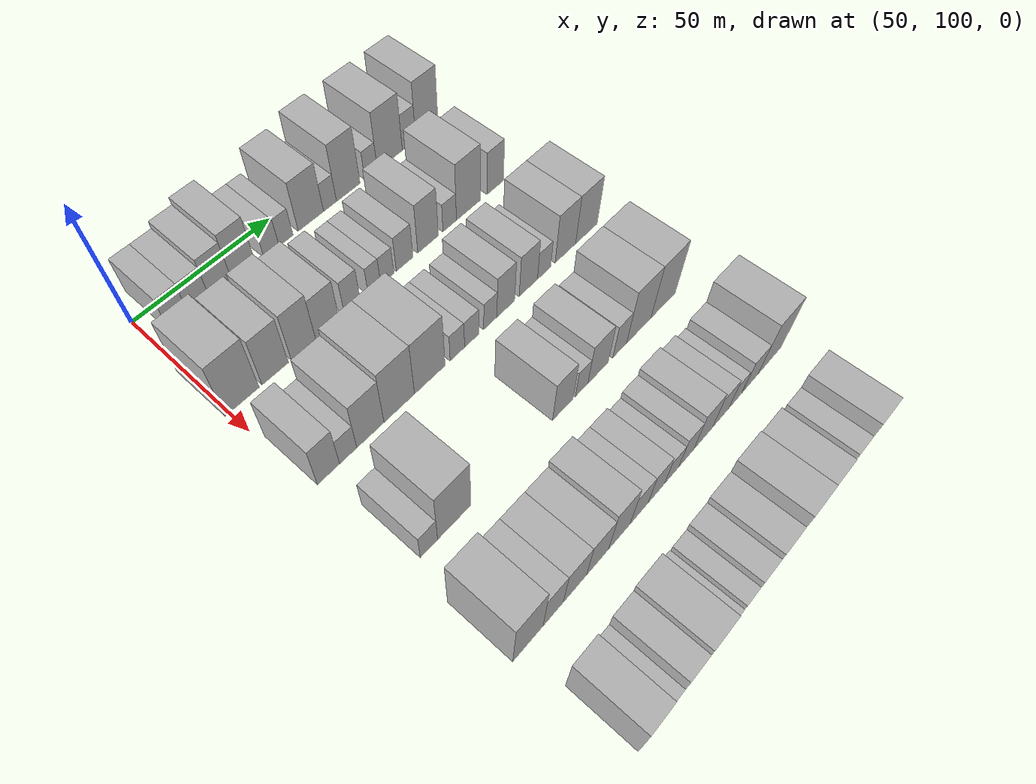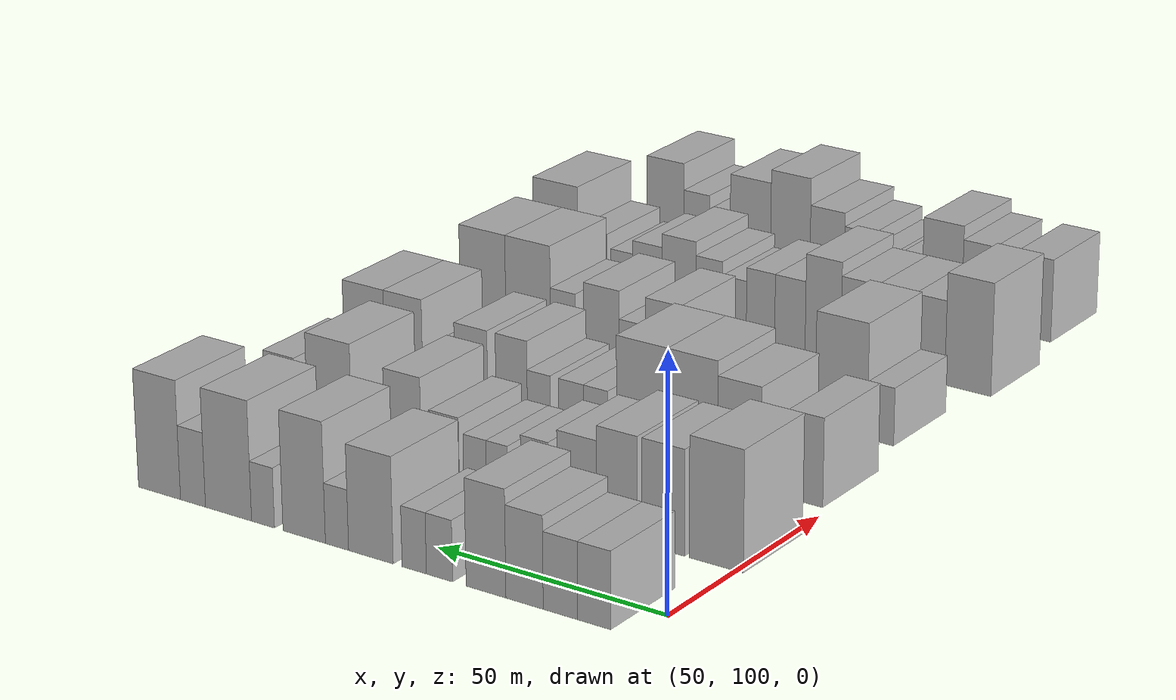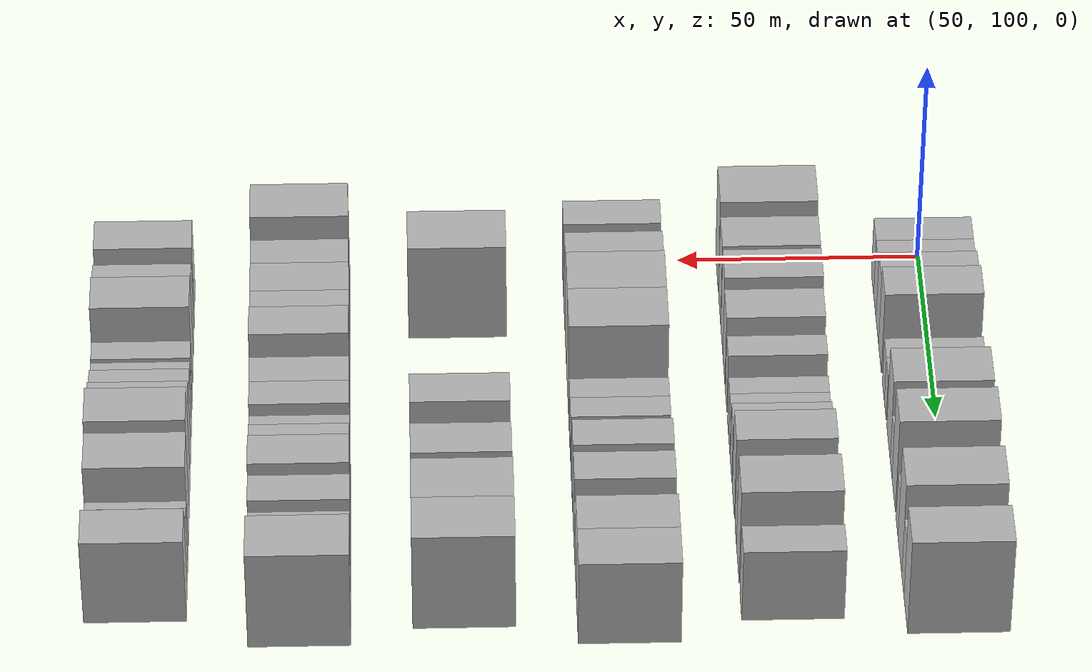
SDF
<sdf version="1.6">
 <world name="default">
  <model name="building_72">
   <static>1</static>
   <pose>50.0000 108.7007 0 0.000000 0.000000 0.000000</pose>
   <link name="link">
    <pose>0 0 7.50 0 0 0</pose>
    <collision name="collision"><geometry><box><size>20.0000 7.0072 15.0000</size></box></geometry></collision>
    <visual name="visual">
     <cast_shadows>0</cast_shadows>
     <geometry><box><size>20.0000 7.0072 15.0000</size></box></geometry>
     <material>
      <script>
       <uri>model://HANNAS_wall/materials/scripts</uri>
       <uri>model://HANNAS_wall/materials/textures</uri>
       <name>vrc/HANNAS_wall</name>
      </script>
     </material>
    </visual>
   </link>
  </model>
  <model name="building_73">
   <static>1</static>
   <pose>50.0000 115.8831 0 0.000000 0.000000 0.000000</pose>
   <link name="link">
    <pose>0 0 7.50 0 0 0</pose>
    <collision name="collision"><geometry><box><size>20.0000 7.3577 15.0000</size></box></geometry></collision>
    <visual name="visual">
     <cast_shadows>0</cast_shadows>
     <geometry><box><size>20.0000 7.3577 15.0000</size></box></geometry>
     <material>
      <script>
       <uri>model://HANNAS_wall/materials/scripts</uri>
       <uri>model://HANNAS_wall/materials/textures</uri>
       <name>vrc/HANNAS_wall</name>
      </script>
     </material>
    </visual>
   </link>
  </model>
  <model name="building_74">
   <static>1</static>
   <pose>50.0000 123.5903 0 0.000000 0.000000 0.000000</pose>
   <link name="link">
    <pose>0 0 9.00 0 0 0</pose>
    <collision name="collision"><geometry><box><size>20.0000 8.0567 18.0000</size></box></geometry></collision>
    <visual name="visual">
     <cast_shadows>0</cast_shadows>
     <geometry><box><size>20.0000 8.0567 18.0000</size></box></geometry>
     <material>
      <script>
       <uri>model://HANNAS_wall/materials/scripts</uri>
       <uri>model://HANNAS_wall/materials/textures</uri>
       <name>vrc/HANNAS_wall</name>
      </script>
     </material>
    </visual>
   </link>
  </model>
  <model name="building_75">
   <static>1</static>
   <pose>50.0000 131.9729 0 0.000000 0.000000 0.000000</pose>
   <link name="link">
    <pose>0 0 10.50 0 0 0</pose>
    <collision name="collision"><geometry><box><size>20.0000 8.7083 21.0000</size></box></geometry></collision>
    <visual name="visual">
     <cast_shadows>0</cast_shadows>
     <geometry><box><size>20.0000 8.7083 21.0000</size></box></geometry>
     <material>
      <script>
       <uri>model://HANNAS_wall/materials/scripts</uri>
       <uri>model://HANNAS_wall/materials/textures</uri>
       <name>vrc/HANNAS_wall</name>
      </script>
     </material>
    </visual>
   </link>
  </model>
  <model name="building_76">
   <static>1</static>
   <pose>50.0000 142.2325 0 0.000000 0.000000 0.000000</pose>
   <link name="link">
    <pose>0 0 6.00 0 0 0</pose>
    <collision name="collision"><geometry><box><size>20.0000 5.8109 12.0000</size></box></geometry></collision>
    <visual name="visual">
     <cast_shadows>0</cast_shadows>
     <geometry><box><size>20.0000 5.8109 12.0000</size></box></geometry>
     <material>
      <script>
       <uri>model://HANNAS_wall/materials/scripts</uri>
       <uri>model://HANNAS_wall/materials/textures</uri>
       <name>vrc/HANNAS_wall</name>
      </script>
     </material>
    </visual>
   </link>
  </model>
  <model name="building_77">
   <static>1</static>
   <pose>50.0000 147.8658 0 0.000000 0.000000 0.000000</pose>
   <link name="link">
    <pose>0 0 6.00 0 0 0</pose>
    <collision name="collision"><geometry><box><size>20.0000 5.4557 12.0000</size></box></geometry></collision>
    <visual name="visual">
     <cast_shadows>0</cast_shadows>
     <geometry><box><size>20.0000 5.4557 12.0000</size></box></geometry>
     <material>
      <script>
       <uri>model://HANNAS_wall/materials/scripts</uri>
       <uri>model://HANNAS_wall/materials/textures</uri>
       <name>vrc/HANNAS_wall</name>
      </script>
     </material>
    </visual>
   </link>
  </model>
  <model name="building_78">
   <static>1</static>
   <pose>50.0000 157.6757 0 0.000000 0.000000 0.000000</pose>
   <link name="link">
    <pose>0 0 10.50 0 0 0</pose>
    <collision name="collision"><geometry><box><size>20.0000 10.1641 21.0000</size></box></geometry></collision>
    <visual name="visual">
     <cast_shadows>0</cast_shadows>
     <geometry><box><size>20.0000 10.1641 21.0000</size></box></geometry>
     <material>
      <script>
       <uri>model://HANNAS_wall/materials/scripts</uri>
       <uri>model://HANNAS_wall/materials/textures</uri>
       <name>vrc/HANNAS_wall</name>
      </script>
     </material>
    </visual>
   </link>
  </model>
  <model name="building_79">
   <static>1</static>
   <pose>50.0000 165.4263 0 0.000000 0.000000 0.000000</pose>
   <link name="link">
    <pose>0 0 6.00 0 0 0</pose>
    <collision name="collision"><geometry><box><size>20.0000 5.3370 12.0000</size></box></geometry></collision>
    <visual name="visual">
     <cast_shadows>0</cast_shadows>
     <geometry><box><size>20.0000 5.3370 12.0000</size></box></geometry>
     <material>
      <script>
       <uri>model://HANNAS_wall/materials/scripts</uri>
       <uri>model://HANNAS_wall/materials/textures</uri>
       <name>vrc/HANNAS_wall</name>
      </script>
     </material>
    </visual>
   </link>
  </model>
  <model name="building_80">
   <static>1</static>
   <pose>50.0000 173.0352 0 0.000000 0.000000 0.000000</pose>
   <link name="link">
    <pose>0 0 12.00 0 0 0</pose>
    <collision name="collision"><geometry><box><size>20.0000 9.8808 24.0000</size></box></geometry></collision>
    <visual name="visual">
     <cast_shadows>0</cast_shadows>
     <geometry><box><size>20.0000 9.8808 24.0000</size></box></geometry>
     <material>
      <script>
       <uri>model://HANNAS_wall/materials/scripts</uri>
       <uri>model://HANNAS_wall/materials/textures</uri>
       <name>vrc/HANNAS_wall</name>
      </script>
     </material>
    </visual>
   </link>
  </model>
  <model name="building_81">
   <static>1</static>
   <pose>50.0000 182.6878 0 0.000000 0.000000 0.000000</pose>
   <link name="link">
    <pose>0 0 6.00 0 0 0</pose>
    <collision name="collision"><geometry><box><size>20.0000 5.4244 12.0000</size></box></geometry></collision>
    <visual name="visual">
     <cast_shadows>0</cast_shadows>
     <geometry><box><size>20.0000 5.4244 12.0000</size></box></geometry>
     <material>
      <script>
       <uri>model://HANNAS_wall/materials/scripts</uri>
       <uri>model://HANNAS_wall/materials/textures</uri>
       <name>vrc/HANNAS_wall</name>
      </script>
     </material>
    </visual>
   </link>
  </model>
  <model name="building_82">
   <static>1</static>
   <pose>50.0000 190.9141 0 0.000000 0.000000 0.000000</pose>
   <link name="link">
    <pose>0 0 12.00 0 0 0</pose>
    <collision name="collision"><geometry><box><size>20.0000 11.0281 24.0000</size></box></geometry></collision>
    <visual name="visual">
     <cast_shadows>0</cast_shadows>
     <geometry><box><size>20.0000 11.0281 24.0000</size></box></geometry>
     <material>
      <script>
       <uri>model://HANNAS_wall/materials/scripts</uri>
       <uri>model://HANNAS_wall/materials/textures</uri>
       <name>vrc/HANNAS_wall</name>
      </script>
     </material>
    </visual>
   </link>
  </model>
  <model name="building_83">
   <static>1</static>
   <pose>50.0000 199.4466 0 0.000000 0.000000 0.000000</pose>
   <link name="link">
    <pose>0 0 7.50 0 0 0</pose>
    <collision name="collision"><geometry><box><size>20.0000 6.0369 15.0000</size></box></geometry></collision>
    <visual name="visual">
     <cast_shadows>0</cast_shadows>
     <geometry><box><size>20.0000 6.0369 15.0000</size></box></geometry>
     <material>
      <script>
       <uri>model://HANNAS_wall/materials/scripts</uri>
       <uri>model://HANNAS_wall/materials/textures</uri>
       <name>vrc/HANNAS_wall</name>
      </script>
     </material>
    </visual>
   </link>
  </model>
  <model name="building_84">
   <static>1</static>
   <pose>50.0000 207.6008 0 0.000000 0.000000 0.000000</pose>
   <link name="link">
    <pose>0 0 12.00 0 0 0</pose>
    <collision name="collision"><geometry><box><size>20.0000 10.2717 24.0000</size></box></geometry></collision>
    <visual name="visual">
     <cast_shadows>0</cast_shadows>
     <geometry><box><size>20.0000 10.2717 24.0000</size></box></geometry>
     <material>
      <script>
       <uri>model://HANNAS_wall/materials/scripts</uri>
       <uri>model://HANNAS_wall/materials/textures</uri>
       <name>vrc/HANNAS_wall</name>
      </script>
     </material>
    </visual>
   </link>
  </model>
  <model name="building_197">
   <static>1</static>
   <pose>82.0000 104.3335 0 0.000000 0.000000 0.000000</pose>
   <link name="link">
    <pose>0 0 12.00 0 0 0</pose>
    <collision name="collision"><geometry><box><size>20.0000 11.5936 24.0000</size></box></geometry></collision>
    <visual name="visual">
     <cast_shadows>0</cast_shadows>
     <geometry><box><size>20.0000 11.5936 24.0000</size></box></geometry>
     <material>
      <script>
       <uri>model://HANNAS_wall/materials/scripts</uri>
       <uri>model://HANNAS_wall/materials/textures</uri>
       <name>vrc/HANNAS_wall</name>
      </script>
     </material>
    </visual>
   </link>
  </model>
  <model name="building_198">
   <static>1</static>
   <pose>82.0000 115.7813 0 0.000000 0.000000 0.000000</pose>
   <link name="link">
    <pose>0 0 10.50 0 0 0</pose>
    <collision name="collision"><geometry><box><size>20.0000 9.3020 21.0000</size></box></geometry></collision>
    <visual name="visual">
     <cast_shadows>0</cast_shadows>
     <geometry><box><size>20.0000 9.3020 21.0000</size></box></geometry>
     <material>
      <script>
       <uri>model://HANNAS_wall/materials/scripts</uri>
       <uri>model://HANNAS_wall/materials/textures</uri>
       <name>vrc/HANNAS_wall</name>
      </script>
     </material>
    </visual>
   </link>
  </model>
  <model name="building_199">
   <static>1</static>
   <pose>82.0000 125.8905 0 0.000000 0.000000 0.000000</pose>
   <link name="link">
    <pose>0 0 10.50 0 0 0</pose>
    <collision name="collision"><geometry><box><size>20.0000 8.9165 21.0000</size></box></geometry></collision>
    <visual name="visual">
     <cast_shadows>0</cast_shadows>
     <geometry><box><size>20.0000 8.9165 21.0000</size></box></geometry>
     <material>
      <script>
       <uri>model://HANNAS_wall/materials/scripts</uri>
       <uri>model://HANNAS_wall/materials/textures</uri>
       <name>vrc/HANNAS_wall</name>
      </script>
     </material>
    </visual>
   </link>
  </model>
  <model name="building_200">
   <static>1</static>
   <pose>82.0000 134.7702 0 0.000000 0.000000 0.000000</pose>
   <link name="link">
    <pose>0 0 9.00 0 0 0</pose>
    <collision name="collision"><geometry><box><size>20.0000 8.8429 18.0000</size></box></geometry></collision>
    <visual name="visual">
     <cast_shadows>0</cast_shadows>
     <geometry><box><size>20.0000 8.8429 18.0000</size></box></geometry>
     <material>
      <script>
       <uri>model://HANNAS_wall/materials/scripts</uri>
       <uri>model://HANNAS_wall/materials/textures</uri>
       <name>vrc/HANNAS_wall</name>
      </script>
     </material>
    </visual>
   </link>
  </model>
  <model name="building_201">
   <static>1</static>
   <pose>82.0000 144.2933 0 0.000000 0.000000 0.000000</pose>
   <link name="link">
    <pose>0 0 7.50 0 0 0</pose>
    <collision name="collision"><geometry><box><size>20.0000 6.2032 15.0000</size></box></geometry></collision>
    <visual name="visual">
     <cast_shadows>0</cast_shadows>
     <geometry><box><size>20.0000 6.2032 15.0000</size></box></geometry>
     <material>
      <script>
       <uri>model://HANNAS_wall/materials/scripts</uri>
       <uri>model://HANNAS_wall/materials/textures</uri>
       <name>vrc/HANNAS_wall</name>
      </script>
     </material>
    </visual>
   </link>
  </model>
  <model name="building_202">
   <static>1</static>
   <pose>82.0000 152.8547 0 0.000000 0.000000 0.000000</pose>
   <link name="link">
    <pose>0 0 6.00 0 0 0</pose>
    <collision name="collision"><geometry><box><size>20.0000 4.9196 12.0000</size></box></geometry></collision>
    <visual name="visual">
     <cast_shadows>0</cast_shadows>
     <geometry><box><size>20.0000 4.9196 12.0000</size></box></geometry>
     <material>
      <script>
       <uri>model://HANNAS_wall/materials/scripts</uri>
       <uri>model://HANNAS_wall/materials/textures</uri>
       <name>vrc/HANNAS_wall</name>
      </script>
     </material>
    </visual>
   </link>
  </model>
  <model name="building_203">
   <static>1</static>
   <pose>82.0000 157.9532 0 0.000000 0.000000 0.000000</pose>
   <link name="link">
    <pose>0 0 6.00 0 0 0</pose>
    <collision name="collision"><geometry><box><size>20.0000 5.2775 12.0000</size></box></geometry></collision>
    <visual name="visual">
     <cast_shadows>0</cast_shadows>
     <geometry><box><size>20.0000 5.2775 12.0000</size></box></geometry>
     <material>
      <script>
       <uri>model://HANNAS_wall/materials/scripts</uri>
       <uri>model://HANNAS_wall/materials/textures</uri>
       <name>vrc/HANNAS_wall</name>
      </script>
     </material>
    </visual>
   </link>
  </model>
  <model name="building_204">
   <static>1</static>
   <pose>82.0000 165.0145 0 0.000000 0.000000 0.000000</pose>
   <link name="link">
    <pose>0 0 7.50 0 0 0</pose>
    <collision name="collision"><geometry><box><size>20.0000 6.8451 15.0000</size></box></geometry></collision>
    <visual name="visual">
     <cast_shadows>0</cast_shadows>
     <geometry><box><size>20.0000 6.8451 15.0000</size></box></geometry>
     <material>
      <script>
       <uri>model://HANNAS_wall/materials/scripts</uri>
       <uri>model://HANNAS_wall/materials/textures</uri>
       <name>vrc/HANNAS_wall</name>
      </script>
     </material>
    </visual>
   </link>
  </model>
  <model name="building_205">
   <static>1</static>
   <pose>82.0000 174.7736 0 0.000000 0.000000 0.000000</pose>
   <link name="link">
    <pose>0 0 10.50 0 0 0</pose>
    <collision name="collision"><geometry><box><size>20.0000 8.6732 21.0000</size></box></geometry></collision>
    <visual name="visual">
     <cast_shadows>0</cast_shadows>
     <geometry><box><size>20.0000 8.6732 21.0000</size></box></geometry>
     <material>
      <script>
       <uri>model://HANNAS_wall/materials/scripts</uri>
       <uri>model://HANNAS_wall/materials/textures</uri>
       <name>vrc/HANNAS_wall</name>
      </script>
     </material>
    </visual>
   </link>
  </model>
  <model name="building_206">
   <static>1</static>
   <pose>82.0000 184.0374 0 0.000000 0.000000 0.000000</pose>
   <link name="link">
    <pose>0 0 6.00 0 0 0</pose>
    <collision name="collision"><geometry><box><size>20.0000 5.8544 12.0000</size></box></geometry></collision>
    <visual name="visual">
     <cast_shadows>0</cast_shadows>
     <geometry><box><size>20.0000 5.8544 12.0000</size></box></geometry>
     <material>
      <script>
       <uri>model://HANNAS_wall/materials/scripts</uri>
       <uri>model://HANNAS_wall/materials/textures</uri>
       <name>vrc/HANNAS_wall</name>
      </script>
     </material>
    </visual>
   </link>
  </model>
  <model name="building_207">
   <static>1</static>
   <pose>82.0000 192.3250 0 0.000000 0.000000 0.000000</pose>
   <link name="link">
    <pose>0 0 12.00 0 0 0</pose>
    <collision name="collision"><geometry><box><size>20.0000 10.7208 24.0000</size></box></geometry></collision>
    <visual name="visual">
     <cast_shadows>0</cast_shadows>
     <geometry><box><size>20.0000 10.7208 24.0000</size></box></geometry>
     <material>
      <script>
       <uri>model://HANNAS_wall/materials/scripts</uri>
       <uri>model://HANNAS_wall/materials/textures</uri>
       <name>vrc/HANNAS_wall</name>
      </script>
     </material>
    </visual>
   </link>
  </model>
  <model name="building_208">
   <static>1</static>
   <pose>82.0000 204.4524 0 0.000000 0.000000 0.000000</pose>
   <link name="link">
    <pose>0 0 9.00 0 0 0</pose>
    <collision name="collision"><geometry><box><size>20.0000 7.5341 18.0000</size></box></geometry></collision>
    <visual name="visual">
     <cast_shadows>0</cast_shadows>
     <geometry><box><size>20.0000 7.5341 18.0000</size></box></geometry>
     <material>
      <script>
       <uri>model://HANNAS_wall/materials/scripts</uri>
       <uri>model://HANNAS_wall/materials/textures</uri>
       <name>vrc/HANNAS_wall</name>
      </script>
     </material>
    </visual>
   </link>
  </model>
  <model name="building_321">
   <static>1</static>
   <pose>114.0000 105.4223 0 0.000000 0.000000 0.000000</pose>
   <link name="link">
    <pose>0 0 9.00 0 0 0</pose>
    <collision name="collision"><geometry><box><size>20.0000 7.5672 18.0000</size></box></geometry></collision>
    <visual name="visual">
     <cast_shadows>0</cast_shadows>
     <geometry><box><size>20.0000 7.5672 18.0000</size></box></geometry>
     <material>
      <script>
       <uri>model://HANNAS_wall/materials/scripts</uri>
       <uri>model://HANNAS_wall/materials/textures</uri>
       <name>vrc/HANNAS_wall</name>
      </script>
     </material>
    </visual>
   </link>
  </model>
  <model name="building_322">
   <static>1</static>
   <pose>114.0000 112.1959 0 0.000000 0.000000 0.000000</pose>
   <link name="link">
    <pose>0 0 6.00 0 0 0</pose>
    <collision name="collision"><geometry><box><size>20.0000 5.9800 12.0000</size></box></geometry></collision>
    <visual name="visual">
     <cast_shadows>0</cast_shadows>
     <geometry><box><size>20.0000 5.9800 12.0000</size></box></geometry>
     <material>
      <script>
       <uri>model://HANNAS_wall/materials/scripts</uri>
       <uri>model://HANNAS_wall/materials/textures</uri>
       <name>vrc/HANNAS_wall</name>
      </script>
     </material>
    </visual>
   </link>
  </model>
  <model name="building_323">
   <static>1</static>
   <pose>114.0000 120.0453 0 0.000000 0.000000 0.000000</pose>
   <link name="link">
    <pose>0 0 10.50 0 0 0</pose>
    <collision name="collision"><geometry><box><size>20.0000 9.7189 21.0000</size></box></geometry></collision>
    <visual name="visual">
     <cast_shadows>0</cast_shadows>
     <geometry><box><size>20.0000 9.7189 21.0000</size></box></geometry>
     <material>
      <script>
       <uri>model://HANNAS_wall/materials/scripts</uri>
       <uri>model://HANNAS_wall/materials/textures</uri>
       <name>vrc/HANNAS_wall</name>
      </script>
     </material>
    </visual>
   </link>
  </model>
  <model name="building_324">
   <static>1</static>
   <pose>114.0000 130.5648 0 0.000000 0.000000 0.000000</pose>
   <link name="link">
    <pose>0 0 12.00 0 0 0</pose>
    <collision name="collision"><geometry><box><size>20.0000 11.3199 24.0000</size></box></geometry></collision>
    <visual name="visual">
     <cast_shadows>0</cast_shadows>
     <geometry><box><size>20.0000 11.3199 24.0000</size></box></geometry>
     <material>
      <script>
       <uri>model://HANNAS_wall/materials/scripts</uri>
       <uri>model://HANNAS_wall/materials/textures</uri>
       <name>vrc/HANNAS_wall</name>
      </script>
     </material>
    </visual>
   </link>
  </model>
  <model name="building_325">
   <static>1</static>
   <pose>114.0000 142.0952 0 0.000000 0.000000 0.000000</pose>
   <link name="link">
    <pose>0 0 12.00 0 0 0</pose>
    <collision name="collision"><geometry><box><size>20.0000 11.7410 24.0000</size></box></geometry></collision>
    <visual name="visual">
     <cast_shadows>0</cast_shadows>
     <geometry><box><size>20.0000 11.7410 24.0000</size></box></geometry>
     <material>
      <script>
       <uri>model://HANNAS_wall/materials/scripts</uri>
       <uri>model://HANNAS_wall/materials/textures</uri>
       <name>vrc/HANNAS_wall</name>
      </script>
     </material>
    </visual>
   </link>
  </model>
  <model name="building_326">
   <static>1</static>
   <pose>114.0000 152.8293 0 0.000000 0.000000 0.000000</pose>
   <link name="link">
    <pose>0 0 6.00 0 0 0</pose>
    <collision name="collision"><geometry><box><size>20.0000 5.7272 12.0000</size></box></geometry></collision>
    <visual name="visual">
     <cast_shadows>0</cast_shadows>
     <geometry><box><size>20.0000 5.7272 12.0000</size></box></geometry>
     <material>
      <script>
       <uri>model://HANNAS_wall/materials/scripts</uri>
       <uri>model://HANNAS_wall/materials/textures</uri>
       <name>vrc/HANNAS_wall</name>
      </script>
     </material>
    </visual>
   </link>
  </model>
  <model name="building_327">
   <static>1</static>
   <pose>114.0000 158.6037 0 0.000000 0.000000 0.000000</pose>
   <link name="link">
    <pose>0 0 6.00 0 0 0</pose>
    <collision name="collision"><geometry><box><size>20.0000 5.8215 12.0000</size></box></geometry></collision>
    <visual name="visual">
     <cast_shadows>0</cast_shadows>
     <geometry><box><size>20.0000 5.8215 12.0000</size></box></geometry>
     <material>
      <script>
       <uri>model://HANNAS_wall/materials/scripts</uri>
       <uri>model://HANNAS_wall/materials/textures</uri>
       <name>vrc/HANNAS_wall</name>
      </script>
     </material>
    </visual>
   </link>
  </model>
  <model name="building_328">
   <static>1</static>
   <pose>114.0000 166.2416 0 0.000000 0.000000 0.000000</pose>
   <link name="link">
    <pose>0 0 6.00 0 0 0</pose>
    <collision name="collision"><geometry><box><size>20.0000 5.4544 12.0000</size></box></geometry></collision>
    <visual name="visual">
     <cast_shadows>0</cast_shadows>
     <geometry><box><size>20.0000 5.4544 12.0000</size></box></geometry>
     <material>
      <script>
       <uri>model://HANNAS_wall/materials/scripts</uri>
       <uri>model://HANNAS_wall/materials/textures</uri>
       <name>vrc/HANNAS_wall</name>
      </script>
     </material>
    </visual>
   </link>
  </model>
  <model name="building_329">
   <static>1</static>
   <pose>114.0000 172.7272 0 0.000000 0.000000 0.000000</pose>
   <link name="link">
    <pose>0 0 9.00 0 0 0</pose>
    <collision name="collision"><geometry><box><size>20.0000 7.5168 18.0000</size></box></geometry></collision>
    <visual name="visual">
     <cast_shadows>0</cast_shadows>
     <geometry><box><size>20.0000 7.5168 18.0000</size></box></geometry>
     <material>
      <script>
       <uri>model://HANNAS_wall/materials/scripts</uri>
       <uri>model://HANNAS_wall/materials/textures</uri>
       <name>vrc/HANNAS_wall</name>
      </script>
     </material>
    </visual>
   </link>
  </model>
  <model name="building_330">
   <static>1</static>
   <pose>114.0000 182.4803 0 0.000000 0.000000 0.000000</pose>
   <link name="link">
    <pose>0 0 9.00 0 0 0</pose>
    <collision name="collision"><geometry><box><size>20.0000 7.9894 18.0000</size></box></geometry></collision>
    <visual name="visual">
     <cast_shadows>0</cast_shadows>
     <geometry><box><size>20.0000 7.9894 18.0000</size></box></geometry>
     <material>
      <script>
       <uri>model://HANNAS_wall/materials/scripts</uri>
       <uri>model://HANNAS_wall/materials/textures</uri>
       <name>vrc/HANNAS_wall</name>
      </script>
     </material>
    </visual>
   </link>
  </model>
  <model name="building_331">
   <static>1</static>
   <pose>114.0000 189.4295 0 0.000000 0.000000 0.000000</pose>
   <link name="link">
    <pose>0 0 6.00 0 0 0</pose>
    <collision name="collision"><geometry><box><size>20.0000 5.9091 12.0000</size></box></geometry></collision>
    <visual name="visual">
     <cast_shadows>0</cast_shadows>
     <geometry><box><size>20.0000 5.9091 12.0000</size></box></geometry>
     <material>
      <script>
       <uri>model://HANNAS_wall/materials/scripts</uri>
       <uri>model://HANNAS_wall/materials/textures</uri>
       <name>vrc/HANNAS_wall</name>
      </script>
     </material>
    </visual>
   </link>
  </model>
  <model name="building_332">
   <static>1</static>
   <pose>114.0000 199.1111 0 0.000000 0.000000 0.000000</pose>
   <link name="link">
    <pose>0 0 10.50 0 0 0</pose>
    <collision name="collision"><geometry><box><size>20.0000 9.4540 21.0000</size></box></geometry></collision>
    <visual name="visual">
     <cast_shadows>0</cast_shadows>
     <geometry><box><size>20.0000 9.4540 21.0000</size></box></geometry>
     <material>
      <script>
       <uri>model://HANNAS_wall/materials/scripts</uri>
       <uri>model://HANNAS_wall/materials/textures</uri>
       <name>vrc/HANNAS_wall</name>
      </script>
     </material>
    </visual>
   </link>
  </model>
  <model name="building_333">
   <static>1</static>
   <pose>114.0000 208.9312 0 0.000000 0.000000 0.000000</pose>
   <link name="link">
    <pose>0 0 10.50 0 0 0</pose>
    <collision name="collision"><geometry><box><size>20.0000 10.1862 21.0000</size></box></geometry></collision>
    <visual name="visual">
     <cast_shadows>0</cast_shadows>
     <geometry><box><size>20.0000 10.1862 21.0000</size></box></geometry>
     <material>
      <script>
       <uri>model://HANNAS_wall/materials/scripts</uri>
       <uri>model://HANNAS_wall/materials/textures</uri>
       <name>vrc/HANNAS_wall</name>
      </script>
     </material>
    </visual>
   </link>
  </model>
  <model name="building_442">
   <static>1</static>
   <pose>146.0000 108.3413 0 0.000000 0.000000 0.000000</pose>
   <link name="link">
    <pose>0 0 6.00 0 0 0</pose>
    <collision name="collision"><geometry><box><size>20.0000 5.9735 12.0000</size></box></geometry></collision>
    <visual name="visual">
     <cast_shadows>0</cast_shadows>
     <geometry><box><size>20.0000 5.9735 12.0000</size></box></geometry>
     <material>
      <script>
       <uri>model://HANNAS_wall/materials/scripts</uri>
       <uri>model://HANNAS_wall/materials/textures</uri>
       <name>vrc/HANNAS_wall</name>
      </script>
     </material>
    </visual>
   </link>
  </model>
  <model name="building_443">
   <static>1</static>
   <pose>146.0000 117.2313 0 0.000000 0.000000 0.000000</pose>
   <link name="link">
    <pose>0 0 12.00 0 0 0</pose>
    <collision name="collision"><geometry><box><size>20.0000 11.8064 24.0000</size></box></geometry></collision>
    <visual name="visual">
     <cast_shadows>0</cast_shadows>
     <geometry><box><size>20.0000 11.8064 24.0000</size></box></geometry>
     <material>
      <script>
       <uri>model://HANNAS_wall/materials/scripts</uri>
       <uri>model://HANNAS_wall/materials/textures</uri>
       <name>vrc/HANNAS_wall</name>
      </script>
     </material>
    </visual>
   </link>
  </model>
  <model name="building_444">
   <static>1</static>
   <pose>146.0000 158.7865 0 0.000000 0.000000 0.000000</pose>
   <link name="link">
    <pose>0 0 9.00 0 0 0</pose>
    <collision name="collision"><geometry><box><size>20.0000 8.4347 18.0000</size></box></geometry></collision>
    <visual name="visual">
     <cast_shadows>0</cast_shadows>
     <geometry><box><size>20.0000 8.4347 18.0000</size></box></geometry>
     <material>
      <script>
       <uri>model://HANNAS_wall/materials/scripts</uri>
       <uri>model://HANNAS_wall/materials/textures</uri>
       <name>vrc/HANNAS_wall</name>
      </script>
     </material>
    </visual>
   </link>
  </model>
  <model name="building_445">
   <static>1</static>
   <pose>146.0000 166.6400 0 0.000000 0.000000 0.000000</pose>
   <link name="link">
    <pose>0 0 6.00 0 0 0</pose>
    <collision name="collision"><geometry><box><size>20.0000 5.2723 12.0000</size></box></geometry></collision>
    <visual name="visual">
     <cast_shadows>0</cast_shadows>
     <geometry><box><size>20.0000 5.2723 12.0000</size></box></geometry>
     <material>
      <script>
       <uri>model://HANNAS_wall/materials/scripts</uri>
       <uri>model://HANNAS_wall/materials/textures</uri>
       <name>vrc/HANNAS_wall</name>
      </script>
     </material>
    </visual>
   </link>
  </model>
  <model name="building_446">
   <static>1</static>
   <pose>146.0000 173.6496 0 0.000000 0.000000 0.000000</pose>
   <link name="link">
    <pose>0 0 9.00 0 0 0</pose>
    <collision name="collision"><geometry><box><size>20.0000 8.7470 18.0000</size></box></geometry></collision>
    <visual name="visual">
     <cast_shadows>0</cast_shadows>
     <geometry><box><size>20.0000 8.7470 18.0000</size></box></geometry>
     <material>
      <script>
       <uri>model://HANNAS_wall/materials/scripts</uri>
       <uri>model://HANNAS_wall/materials/textures</uri>
       <name>vrc/HANNAS_wall</name>
      </script>
     </material>
    </visual>
   </link>
  </model>
  <model name="building_447">
   <static>1</static>
   <pose>146.0000 183.1071 0 0.000000 0.000000 0.000000</pose>
   <link name="link">
    <pose>0 0 7.50 0 0 0</pose>
    <collision name="collision"><geometry><box><size>20.0000 6.1679 15.0000</size></box></geometry></collision>
    <visual name="visual">
     <cast_shadows>0</cast_shadows>
     <geometry><box><size>20.0000 6.1679 15.0000</size></box></geometry>
     <material>
      <script>
       <uri>model://HANNAS_wall/materials/scripts</uri>
       <uri>model://HANNAS_wall/materials/textures</uri>
       <name>vrc/HANNAS_wall</name>
      </script>
     </material>
    </visual>
   </link>
  </model>
  <model name="building_448">
   <static>1</static>
   <pose>146.0000 191.7806 0 0.000000 0.000000 0.000000</pose>
   <link name="link">
    <pose>0 0 12.00 0 0 0</pose>
    <collision name="collision"><geometry><box><size>20.0000 11.1790 24.0000</size></box></geometry></collision>
    <visual name="visual">
     <cast_shadows>0</cast_shadows>
     <geometry><box><size>20.0000 11.1790 24.0000</size></box></geometry>
     <material>
      <script>
       <uri>model://HANNAS_wall/materials/scripts</uri>
       <uri>model://HANNAS_wall/materials/textures</uri>
       <name>vrc/HANNAS_wall</name>
      </script>
     </material>
    </visual>
   </link>
  </model>
  <model name="building_449">
   <static>1</static>
   <pose>146.0000 203.1558 0 0.000000 0.000000 0.000000</pose>
   <link name="link">
    <pose>0 0 12.00 0 0 0</pose>
    <collision name="collision"><geometry><box><size>20.0000 11.5716 24.0000</size></box></geometry></collision>
    <visual name="visual">
     <cast_shadows>0</cast_shadows>
     <geometry><box><size>20.0000 11.5716 24.0000</size></box></geometry>
     <material>
      <script>
       <uri>model://HANNAS_wall/materials/scripts</uri>
       <uri>model://HANNAS_wall/materials/textures</uri>
       <name>vrc/HANNAS_wall</name>
      </script>
     </material>
    </visual>
   </link>
  </model>
  <model name="building_558">
   <static>1</static>
   <pose>178.0000 107.2396 0 0.000000 0.000000 0.000000</pose>
   <link name="link">
    <pose>0 0 12.00 0 0 0</pose>
    <collision name="collision"><geometry><box><size>20.0000 10.5270 24.0000</size></box></geometry></collision>
    <visual name="visual">
     <cast_shadows>0</cast_shadows>
     <geometry><box><size>20.0000 10.5270 24.0000</size></box></geometry>
     <material>
      <script>
       <uri>model://HANNAS_wall/materials/scripts</uri>
       <uri>model://HANNAS_wall/materials/textures</uri>
       <name>vrc/HANNAS_wall</name>
      </script>
     </material>
    </visual>
   </link>
  </model>
  <model name="building_559">
   <static>1</static>
   <pose>178.0000 116.1425 0 0.000000 0.000000 0.000000</pose>
   <link name="link">
    <pose>0 0 9.00 0 0 0</pose>
    <collision name="collision"><geometry><box><size>20.0000 7.2788 18.0000</size></box></geometry></collision>
    <visual name="visual">
     <cast_shadows>0</cast_shadows>
     <geometry><box><size>20.0000 7.2788 18.0000</size></box></geometry>
     <material>
      <script>
       <uri>model://HANNAS_wall/materials/scripts</uri>
       <uri>model://HANNAS_wall/materials/textures</uri>
       <name>vrc/HANNAS_wall</name>
      </script>
     </material>
    </visual>
   </link>
  </model>
  <model name="building_560">
   <static>1</static>
   <pose>178.0000 124.1015 0 0.000000 0.000000 0.000000</pose>
   <link name="link">
    <pose>0 0 9.00 0 0 0</pose>
    <collision name="collision"><geometry><box><size>20.0000 8.6392 18.0000</size></box></geometry></collision>
    <visual name="visual">
     <cast_shadows>0</cast_shadows>
     <geometry><box><size>20.0000 8.6392 18.0000</size></box></geometry>
     <material>
      <script>
       <uri>model://HANNAS_wall/materials/scripts</uri>
       <uri>model://HANNAS_wall/materials/textures</uri>
       <name>vrc/HANNAS_wall</name>
      </script>
     </material>
    </visual>
   </link>
  </model>
  <model name="building_561">
   <static>1</static>
   <pose>178.0000 132.6062 0 0.000000 0.000000 0.000000</pose>
   <link name="link">
    <pose>0 0 9.00 0 0 0</pose>
    <collision name="collision"><geometry><box><size>20.0000 8.3702 18.0000</size></box></geometry></collision>
    <visual name="visual">
     <cast_shadows>0</cast_shadows>
     <geometry><box><size>20.0000 8.3702 18.0000</size></box></geometry>
     <material>
      <script>
       <uri>model://HANNAS_wall/materials/scripts</uri>
       <uri>model://HANNAS_wall/materials/textures</uri>
       <name>vrc/HANNAS_wall</name>
      </script>
     </material>
    </visual>
   </link>
  </model>
  <model name="building_562">
   <static>1</static>
   <pose>178.0000 141.0428 0 0.000000 0.000000 0.000000</pose>
   <link name="link">
    <pose>0 0 10.50 0 0 0</pose>
    <collision name="collision"><geometry><box><size>20.0000 8.5031 21.0000</size></box></geometry></collision>
    <visual name="visual">
     <cast_shadows>0</cast_shadows>
     <geometry><box><size>20.0000 8.5031 21.0000</size></box></geometry>
     <material>
      <script>
       <uri>model://HANNAS_wall/materials/scripts</uri>
       <uri>model://HANNAS_wall/materials/textures</uri>
       <name>vrc/HANNAS_wall</name>
      </script>
     </material>
    </visual>
   </link>
  </model>
  <model name="building_563">
   <static>1</static>
   <pose>178.0000 148.9689 0 0.000000 0.000000 0.000000</pose>
   <link name="link">
    <pose>0 0 7.50 0 0 0</pose>
    <collision name="collision"><geometry><box><size>20.0000 7.3491 15.0000</size></box></geometry></collision>
    <visual name="visual">
     <cast_shadows>0</cast_shadows>
     <geometry><box><size>20.0000 7.3491 15.0000</size></box></geometry>
     <material>
      <script>
       <uri>model://HANNAS_wall/materials/scripts</uri>
       <uri>model://HANNAS_wall/materials/textures</uri>
       <name>vrc/HANNAS_wall</name>
      </script>
     </material>
    </visual>
   </link>
  </model>
  <model name="building_564">
   <static>1</static>
   <pose>178.0000 156.0961 0 0.000000 0.000000 0.000000</pose>
   <link name="link">
    <pose>0 0 7.50 0 0 0</pose>
    <collision name="collision"><geometry><box><size>20.0000 6.9054 15.0000</size></box></geometry></collision>
    <visual name="visual">
     <cast_shadows>0</cast_shadows>
     <geometry><box><size>20.0000 6.9054 15.0000</size></box></geometry>
     <material>
      <script>
       <uri>model://HANNAS_wall/materials/scripts</uri>
       <uri>model://HANNAS_wall/materials/textures</uri>
       <name>vrc/HANNAS_wall</name>
      </script>
     </material>
    </visual>
   </link>
  </model>
  <model name="building_565">
   <static>1</static>
   <pose>178.0000 162.5266 0 0.000000 0.000000 0.000000</pose>
   <link name="link">
    <pose>0 0 6.00 0 0 0</pose>
    <collision name="collision"><geometry><box><size>20.0000 5.9557 12.0000</size></box></geometry></collision>
    <visual name="visual">
     <cast_shadows>0</cast_shadows>
     <geometry><box><size>20.0000 5.9557 12.0000</size></box></geometry>
     <material>
      <script>
       <uri>model://HANNAS_wall/materials/scripts</uri>
       <uri>model://HANNAS_wall/materials/textures</uri>
       <name>vrc/HANNAS_wall</name>
      </script>
     </material>
    </visual>
   </link>
  </model>
  <model name="building_566">
   <static>1</static>
   <pose>178.0000 168.7561 0 0.000000 0.000000 0.000000</pose>
   <link name="link">
    <pose>0 0 7.50 0 0 0</pose>
    <collision name="collision"><geometry><box><size>20.0000 6.5033 15.0000</size></box></geometry></collision>
    <visual name="visual">
     <cast_shadows>0</cast_shadows>
     <geometry><box><size>20.0000 6.5033 15.0000</size></box></geometry>
     <material>
      <script>
       <uri>model://HANNAS_wall/materials/scripts</uri>
       <uri>model://HANNAS_wall/materials/textures</uri>
       <name>vrc/HANNAS_wall</name>
      </script>
     </material>
    </visual>
   </link>
  </model>
  <model name="building_567">
   <static>1</static>
   <pose>178.0000 176.2315 0 0.000000 0.000000 0.000000</pose>
   <link name="link">
    <pose>0 0 9.00 0 0 0</pose>
    <collision name="collision"><geometry><box><size>20.0000 8.4476 18.0000</size></box></geometry></collision>
    <visual name="visual">
     <cast_shadows>0</cast_shadows>
     <geometry><box><size>20.0000 8.4476 18.0000</size></box></geometry>
     <material>
      <script>
       <uri>model://HANNAS_wall/materials/scripts</uri>
       <uri>model://HANNAS_wall/materials/textures</uri>
       <name>vrc/HANNAS_wall</name>
      </script>
     </material>
    </visual>
   </link>
  </model>
  <model name="building_568">
   <static>1</static>
   <pose>178.0000 184.1552 0 0.000000 0.000000 0.000000</pose>
   <link name="link">
    <pose>0 0 7.50 0 0 0</pose>
    <collision name="collision"><geometry><box><size>20.0000 7.3998 15.0000</size></box></geometry></collision>
    <visual name="visual">
     <cast_shadows>0</cast_shadows>
     <geometry><box><size>20.0000 7.3998 15.0000</size></box></geometry>
     <material>
      <script>
       <uri>model://HANNAS_wall/materials/scripts</uri>
       <uri>model://HANNAS_wall/materials/textures</uri>
       <name>vrc/HANNAS_wall</name>
      </script>
     </material>
    </visual>
   </link>
  </model>
  <model name="building_569">
   <static>1</static>
   <pose>178.0000 190.6128 0 0.000000 0.000000 0.000000</pose>
   <link name="link">
    <pose>0 0 6.00 0 0 0</pose>
    <collision name="collision"><geometry><box><size>20.0000 5.5153 12.0000</size></box></geometry></collision>
    <visual name="visual">
     <cast_shadows>0</cast_shadows>
     <geometry><box><size>20.0000 5.5153 12.0000</size></box></geometry>
     <material>
      <script>
       <uri>model://HANNAS_wall/materials/scripts</uri>
       <uri>model://HANNAS_wall/materials/textures</uri>
       <name>vrc/HANNAS_wall</name>
      </script>
     </material>
    </visual>
   </link>
  </model>
  <model name="building_570">
   <static>1</static>
   <pose>178.0000 198.0890 0 0.000000 0.000000 0.000000</pose>
   <link name="link">
    <pose>0 0 7.50 0 0 0</pose>
    <collision name="collision"><geometry><box><size>20.0000 7.4370 15.0000</size></box></geometry></collision>
    <visual name="visual">
     <cast_shadows>0</cast_shadows>
     <geometry><box><size>20.0000 7.4370 15.0000</size></box></geometry>
     <material>
      <script>
       <uri>model://HANNAS_wall/materials/scripts</uri>
       <uri>model://HANNAS_wall/materials/textures</uri>
       <name>vrc/HANNAS_wall</name>
      </script>
     </material>
    </visual>
   </link>
  </model>
  <model name="building_571">
   <static>1</static>
   <pose>178.0000 207.5854 0 0.000000 0.000000 0.000000</pose>
   <link name="link">
    <pose>0 0 12.00 0 0 0</pose>
    <collision name="collision"><geometry><box><size>20.0000 11.5558 24.0000</size></box></geometry></collision>
    <visual name="visual">
     <cast_shadows>0</cast_shadows>
     <geometry><box><size>20.0000 11.5558 24.0000</size></box></geometry>
     <material>
      <script>
       <uri>model://HANNAS_wall/materials/scripts</uri>
       <uri>model://HANNAS_wall/materials/textures</uri>
       <name>vrc/HANNAS_wall</name>
      </script>
     </material>
    </visual>
   </link>
  </model>
  <model name="building_681">
   <static>1</static>
   <pose>210.0000 110.2744 0 0.000000 0.000000 0.000000</pose>
   <link name="link">
    <pose>0 0 9.00 0 0 0</pose>
    <collision name="collision"><geometry><box><size>20.0000 8.7383 18.0000</size></box></geometry></collision>
    <visual name="visual">
     <cast_shadows>0</cast_shadows>
     <geometry><box><size>20.0000 8.7383 18.0000</size></box></geometry>
     <material>
      <script>
       <uri>model://HANNAS_wall/materials/scripts</uri>
       <uri>model://HANNAS_wall/materials/textures</uri>
       <name>vrc/HANNAS_wall</name>
      </script>
     </material>
    </visual>
   </link>
  </model>
  <model name="building_682">
   <static>1</static>
   <pose>210.0000 117.0871 0 0.000000 0.000000 0.000000</pose>
   <link name="link">
    <pose>0 0 6.00 0 0 0</pose>
    <collision name="collision"><geometry><box><size>20.0000 4.8871 12.0000</size></box></geometry></collision>
    <visual name="visual">
     <cast_shadows>0</cast_shadows>
     <geometry><box><size>20.0000 4.8871 12.0000</size></box></geometry>
     <material>
      <script>
       <uri>model://HANNAS_wall/materials/scripts</uri>
       <uri>model://HANNAS_wall/materials/textures</uri>
       <name>vrc/HANNAS_wall</name>
      </script>
     </material>
    </visual>
   </link>
  </model>
  <model name="building_683">
   <static>1</static>
   <pose>210.0000 123.2237 0 0.000000 0.000000 0.000000</pose>
   <link name="link">
    <pose>0 0 9.00 0 0 0</pose>
    <collision name="collision"><geometry><box><size>20.0000 7.3861 18.0000</size></box></geometry></collision>
    <visual name="visual">
     <cast_shadows>0</cast_shadows>
     <geometry><box><size>20.0000 7.3861 18.0000</size></box></geometry>
     <material>
      <script>
       <uri>model://HANNAS_wall/materials/scripts</uri>
       <uri>model://HANNAS_wall/materials/textures</uri>
       <name>vrc/HANNAS_wall</name>
      </script>
     </material>
    </visual>
   </link>
  </model>
  <model name="building_684">
   <static>1</static>
   <pose>210.0000 131.7115 0 0.000000 0.000000 0.000000</pose>
   <link name="link">
    <pose>0 0 10.50 0 0 0</pose>
    <collision name="collision"><geometry><box><size>20.0000 9.5896 21.0000</size></box></geometry></collision>
    <visual name="visual">
     <cast_shadows>0</cast_shadows>
     <geometry><box><size>20.0000 9.5896 21.0000</size></box></geometry>
     <material>
      <script>
       <uri>model://HANNAS_wall/materials/scripts</uri>
       <uri>model://HANNAS_wall/materials/textures</uri>
       <name>vrc/HANNAS_wall</name>
      </script>
     </material>
    </visual>
   </link>
  </model>
  <model name="building_685">
   <static>1</static>
   <pose>210.0000 139.1724 0 0.000000 0.000000 0.000000</pose>
   <link name="link">
    <pose>0 0 6.00 0 0 0</pose>
    <collision name="collision"><geometry><box><size>20.0000 5.3323 12.0000</size></box></geometry></collision>
    <visual name="visual">
     <cast_shadows>0</cast_shadows>
     <geometry><box><size>20.0000 5.3323 12.0000</size></box></geometry>
     <material>
      <script>
       <uri>model://HANNAS_wall/materials/scripts</uri>
       <uri>model://HANNAS_wall/materials/textures</uri>
       <name>vrc/HANNAS_wall</name>
      </script>
     </material>
    </visual>
   </link>
  </model>
  <model name="building_686">
   <static>1</static>
   <pose>210.0000 145.6224 0 0.000000 0.000000 0.000000</pose>
   <link name="link">
    <pose>0 0 6.00 0 0 0</pose>
    <collision name="collision"><geometry><box><size>20.0000 5.5676 12.0000</size></box></geometry></collision>
    <visual name="visual">
     <cast_shadows>0</cast_shadows>
     <geometry><box><size>20.0000 5.5676 12.0000</size></box></geometry>
     <material>
      <script>
       <uri>model://HANNAS_wall/materials/scripts</uri>
       <uri>model://HANNAS_wall/materials/textures</uri>
       <name>vrc/HANNAS_wall</name>
      </script>
     </material>
    </visual>
   </link>
  </model>
  <model name="building_687">
   <static>1</static>
   <pose>210.0000 151.9673 0 0.000000 0.000000 0.000000</pose>
   <link name="link">
    <pose>0 0 7.50 0 0 0</pose>
    <collision name="collision"><geometry><box><size>20.0000 7.1223 15.0000</size></box></geometry></collision>
    <visual name="visual">
     <cast_shadows>0</cast_shadows>
     <geometry><box><size>20.0000 7.1223 15.0000</size></box></geometry>
     <material>
      <script>
       <uri>model://HANNAS_wall/materials/scripts</uri>
       <uri>model://HANNAS_wall/materials/textures</uri>
       <name>vrc/HANNAS_wall</name>
      </script>
     </material>
    </visual>
   </link>
  </model>
  <model name="building_688">
   <static>1</static>
   <pose>210.0000 159.7888 0 0.000000 0.000000 0.000000</pose>
   <link name="link">
    <pose>0 0 9.00 0 0 0</pose>
    <collision name="collision"><geometry><box><size>20.0000 8.5206 18.0000</size></box></geometry></collision>
    <visual name="visual">
     <cast_shadows>0</cast_shadows>
     <geometry><box><size>20.0000 8.5206 18.0000</size></box></geometry>
     <material>
      <script>
       <uri>model://HANNAS_wall/materials/scripts</uri>
       <uri>model://HANNAS_wall/materials/textures</uri>
       <name>vrc/HANNAS_wall</name>
      </script>
     </material>
    </visual>
   </link>
  </model>
  <model name="building_689">
   <static>1</static>
   <pose>210.0000 169.0129 0 0.000000 0.000000 0.000000</pose>
   <link name="link">
    <pose>0 0 12.00 0 0 0</pose>
    <collision name="collision"><geometry><box><size>20.0000 9.9277 24.0000</size></box></geometry></collision>
    <visual name="visual">
     <cast_shadows>0</cast_shadows>
     <geometry><box><size>20.0000 9.9277 24.0000</size></box></geometry>
     <material>
      <script>
       <uri>model://HANNAS_wall/materials/scripts</uri>
       <uri>model://HANNAS_wall/materials/textures</uri>
       <name>vrc/HANNAS_wall</name>
      </script>
     </material>
    </visual>
   </link>
  </model>
  <model name="building_690">
   <static>1</static>
   <pose>210.0000 179.1213 0 0.000000 0.000000 0.000000</pose>
   <link name="link">
    <pose>0 0 10.50 0 0 0</pose>
    <collision name="collision"><geometry><box><size>20.0000 10.2889 21.0000</size></box></geometry></collision>
    <visual name="visual">
     <cast_shadows>0</cast_shadows>
     <geometry><box><size>20.0000 10.2889 21.0000</size></box></geometry>
     <material>
      <script>
       <uri>model://HANNAS_wall/materials/scripts</uri>
       <uri>model://HANNAS_wall/materials/textures</uri>
       <name>vrc/HANNAS_wall</name>
      </script>
     </material>
    </visual>
   </link>
  </model>
  <model name="building_691">
   <static>1</static>
   <pose>210.0000 186.9513 0 0.000000 0.000000 0.000000</pose>
   <link name="link">
    <pose>0 0 6.00 0 0 0</pose>
    <collision name="collision"><geometry><box><size>20.0000 5.3713 12.0000</size></box></geometry></collision>
    <visual name="visual">
     <cast_shadows>0</cast_shadows>
     <geometry><box><size>20.0000 5.3713 12.0000</size></box></geometry>
     <material>
      <script>
       <uri>model://HANNAS_wall/materials/scripts</uri>
       <uri>model://HANNAS_wall/materials/textures</uri>
       <name>vrc/HANNAS_wall</name>
      </script>
     </material>
    </visual>
   </link>
  </model>
  <model name="building_692">
   <static>1</static>
   <pose>210.0000 192.9136 0 0.000000 0.000000 0.000000</pose>
   <link name="link">
    <pose>0 0 7.50 0 0 0</pose>
    <collision name="collision"><geometry><box><size>20.0000 6.5532 15.0000</size></box></geometry></collision>
    <visual name="visual">
     <cast_shadows>0</cast_shadows>
     <geometry><box><size>20.0000 6.5532 15.0000</size></box></geometry>
     <material>
      <script>
       <uri>model://HANNAS_wall/materials/scripts</uri>
       <uri>model://HANNAS_wall/materials/textures</uri>
       <name>vrc/HANNAS_wall</name>
      </script>
     </material>
    </visual>
   </link>
  </model>
  <model name="building_693">
   <static>1</static>
   <pose>210.0000 200.9930 0 0.000000 0.000000 0.000000</pose>
   <link name="link">
    <pose>0 0 10.50 0 0 0</pose>
    <collision name="collision"><geometry><box><size>20.0000 9.6057 21.0000</size></box></geometry></collision>
    <visual name="visual">
     <cast_shadows>0</cast_shadows>
     <geometry><box><size>20.0000 9.6057 21.0000</size></box></geometry>
     <material>
      <script>
       <uri>model://HANNAS_wall/materials/scripts</uri>
       <uri>model://HANNAS_wall/materials/textures</uri>
       <name>vrc/HANNAS_wall</name>
      </script>
     </material>
    </visual>
   </link>
  </model>
 </world>
</sdf>
